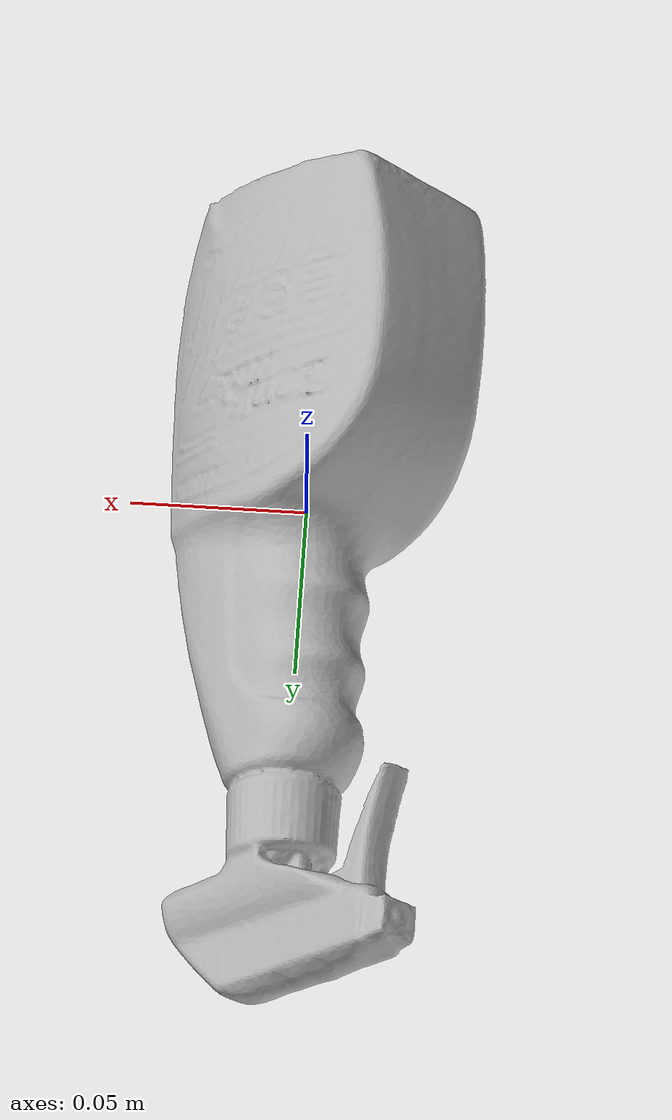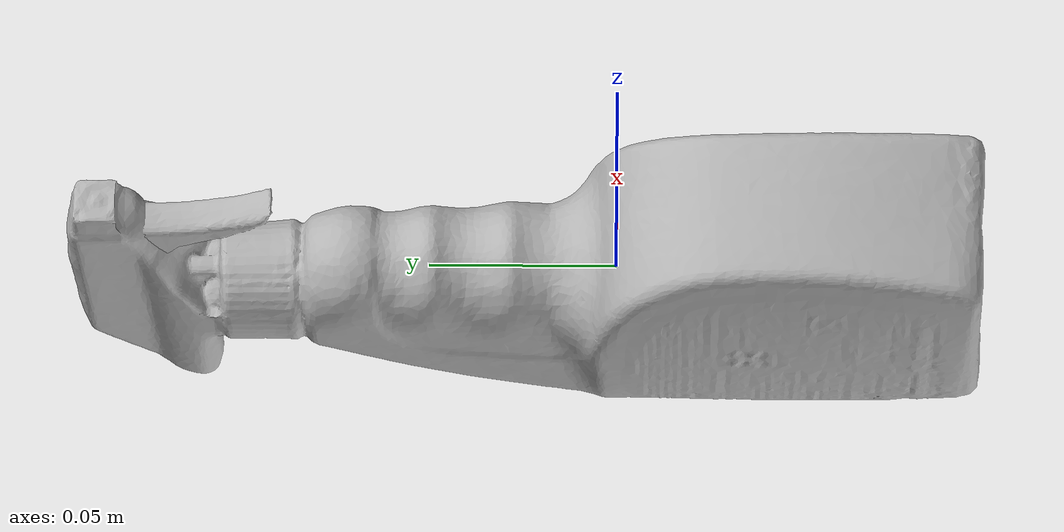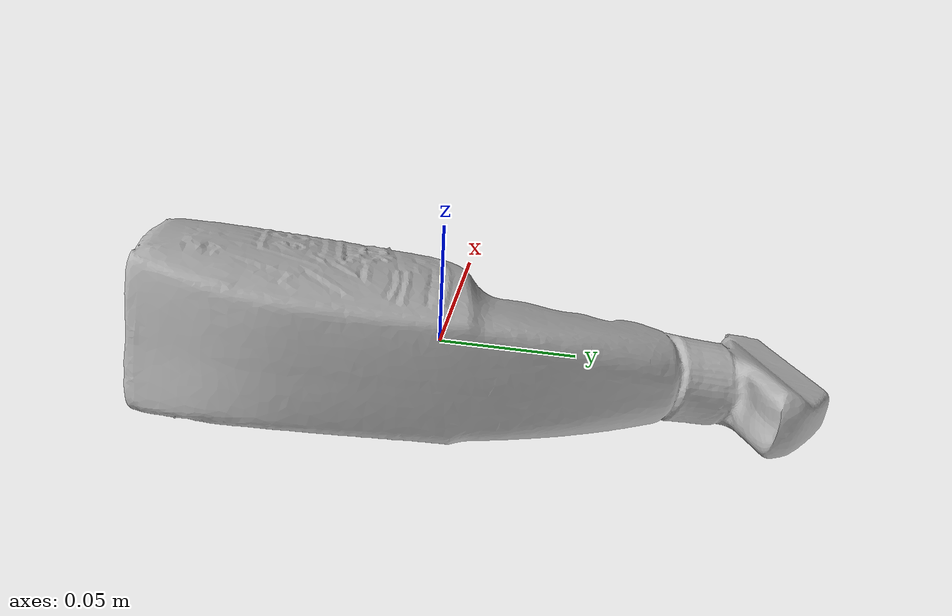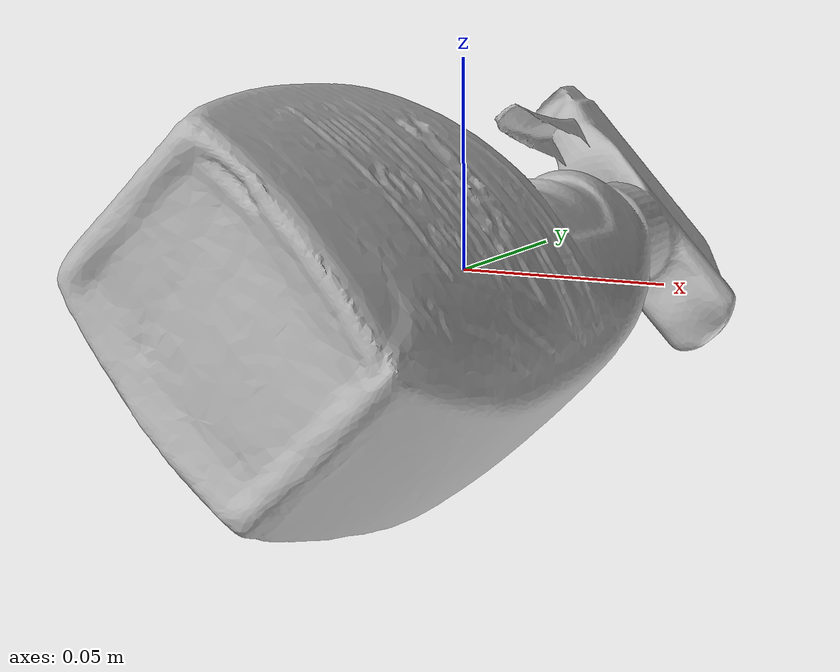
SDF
<?xml version='1.0'?>
<sdf version="1.4">
  <model name="Sprayflask">
    <static>false</static>
    <link name="link">
      <inertial>
        <pose>-0.002785468236156705 0.005715618704983147 0.00011881294039560163 1.586941892146241 0.7445810928953375 -3.127850877782315</pose>
        <mass>0.08620390353525628</mass>
        <inertia>
          <ixx>0.00039236136567193265</ixx>
          <ixy>1.6806471033118872e-19</ixy>
          <ixz>3.832518279714788e-20</ixz>
          <iyy>0.00035824673823893884</iyy>
          <iyz>-5.587349462776231e-20</iyz>
          <izz>6.50844446270391e-05</izz>
        </inertia>
      </inertial>
      <collision name="collision">
        <geometry>
          <mesh>
            <!-- Use a downsampled mesh for collisions -->
            <uri>model:///Sprayflask/Sprayflask_250_collision.obj</uri>
	        </mesh>
        </geometry>
        <surface>
      </surface>
      </collision>
      <visual name="visual">
        <geometry>
          <mesh>
            <uri>model:///Sprayflask/Sprayflask_25k_tex.obj</uri>
	        </mesh>
        </geometry>
        <material>
          <script>
            <uri>model:///Sprayflask/Sprayflask.material</uri>
            <name>Sprayflask</name>
          </script>
        </material>
      </visual>
    </link>
  </model>
</sdf>
